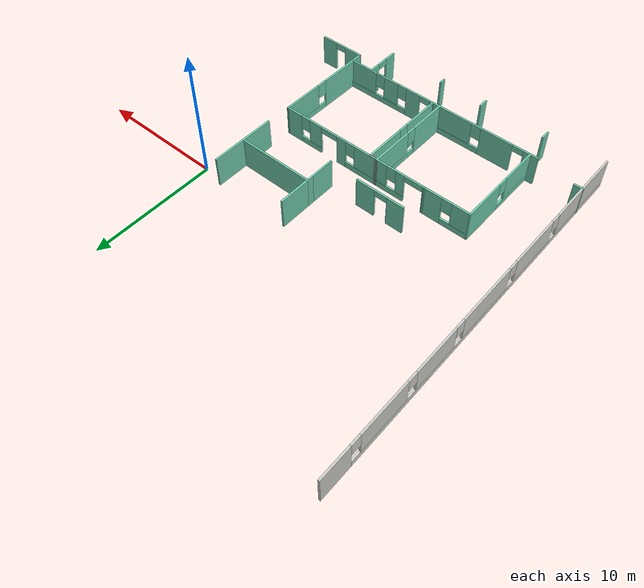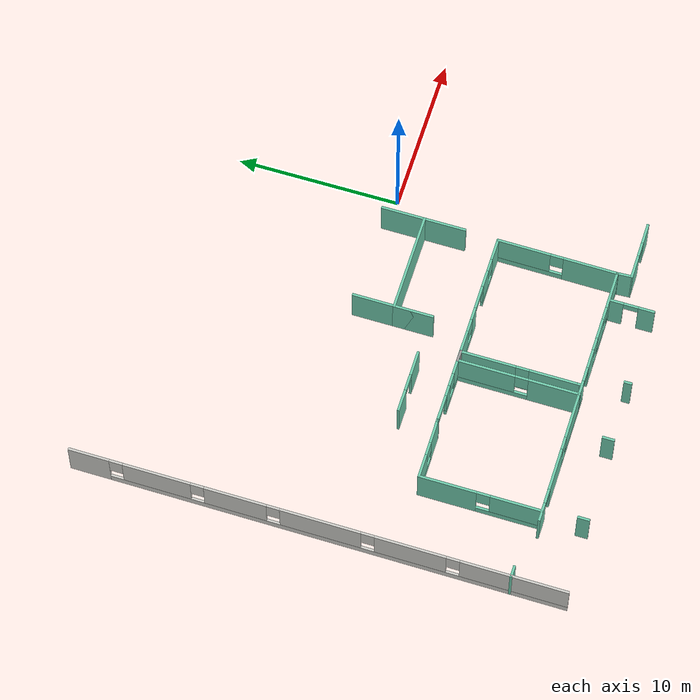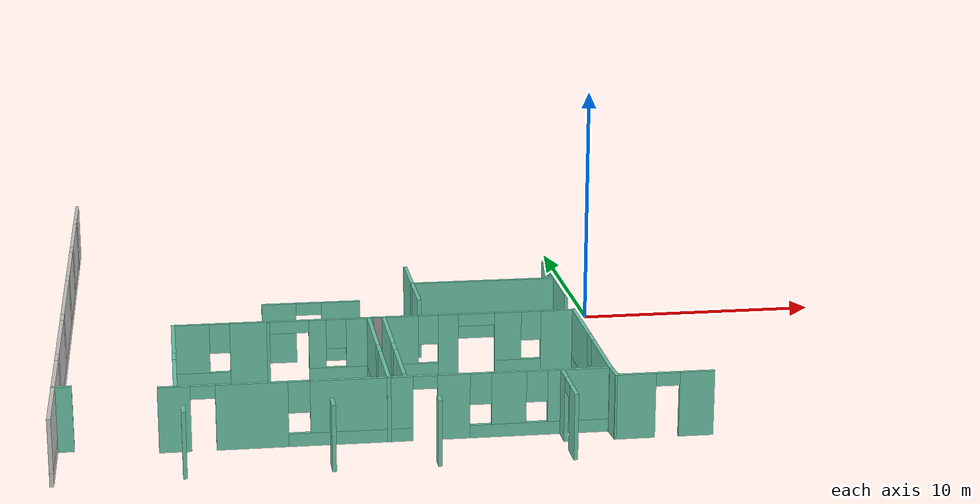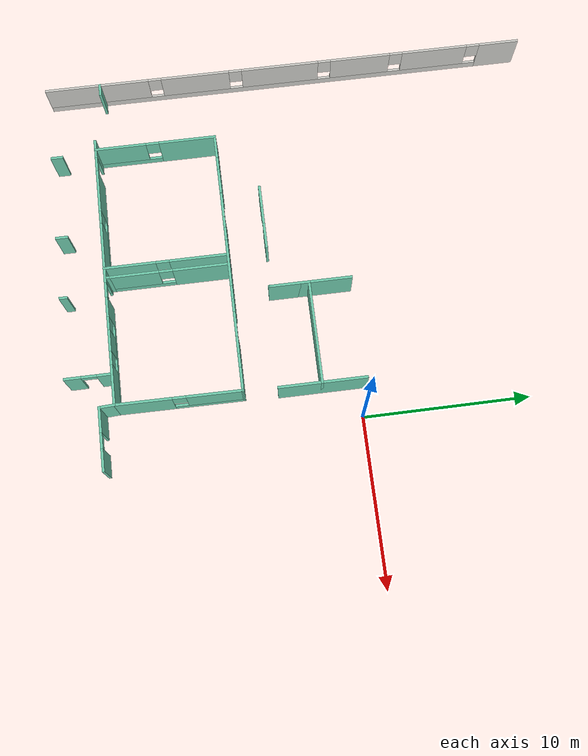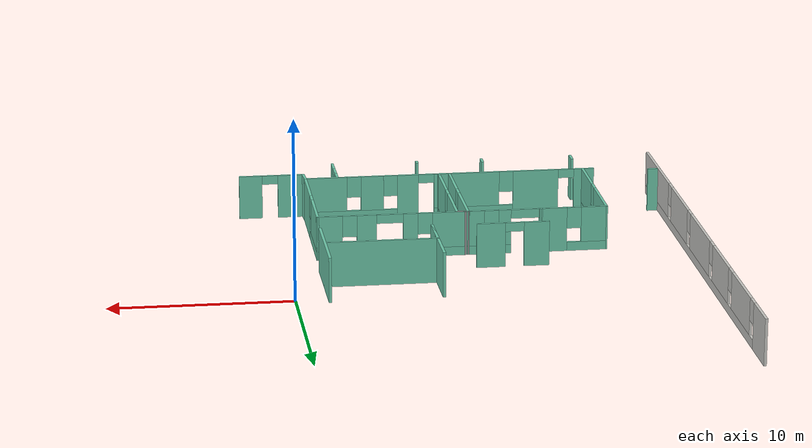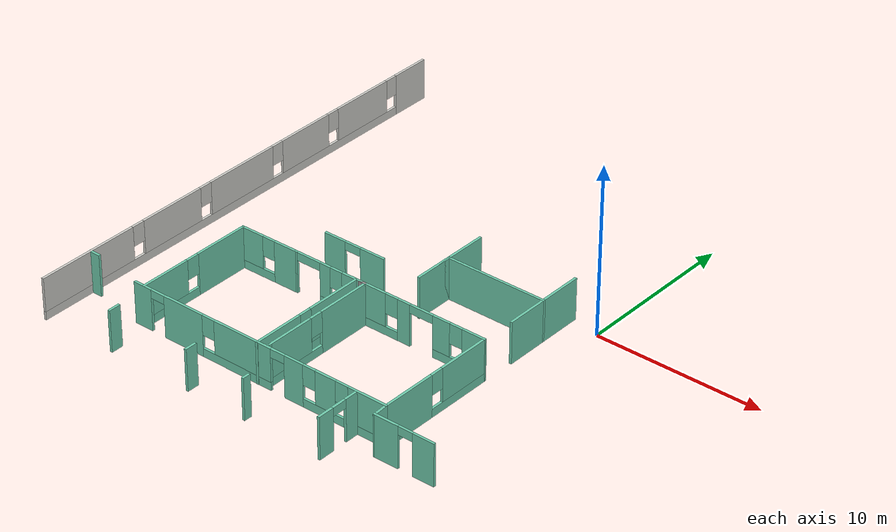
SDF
<sdf version="1.6">
 <model name="Hospital_empty">
  <pose>-0.033999 0.051012 0 0 -0 0</pose>
  <link name="Wall_0">
   <pose>-22.2855 -2.07101 0 0 0 -1.57157</pose>
   <visual name="Wall_0_Visual_0">
    <pose>-13.6979 0 1.25 0 -0 0</pose>
    <geometry><box><size>2.48559 0.15 2.5</size></box></geometry>
    <material>
     <script><uri>file://media/materials/scripts/gazebo.material</uri><name>Gazebo/CeilingTiled</name></script>
     <ambient>0.435294 0.796078 0.67451 1</ambient>
    </material>
   </visual>
   <collision name="Wall_0_Collision_0">
    <geometry><box><size>2.48559 0.15 2.5</size></box></geometry>
    <pose>-13.6979 0 1.25 0 -0 0</pose>
   </collision>
   <visual name="Wall_0_Visual_1">
    <pose>1.2428 0 0.25 0 -0 0</pose>
    <geometry><box><size>27.3959 0.15 0.5</size></box></geometry>
    <material>
     <script><uri>file://media/materials/scripts/gazebo.material</uri><name>Gazebo/CeilingTiled</name></script>
     <ambient>0.435294 0.796078 0.67451 1</ambient>
    </material>
   </visual>
   <collision name="Wall_0_Collision_1">
    <geometry><box><size>27.3959 0.15 0.5</size></box></geometry>
    <pose>1.2428 0 0.25 0 -0 0</pose>
   </collision>
   <visual name="Wall_0_Visual_2">
    <pose>-9.59967 0 1.5 0 -0 0</pose>
    <geometry><box><size>4.11095 0.15 2</size></box></geometry>
    <material>
     <script><uri>file://media/materials/scripts/gazebo.material</uri><name>Gazebo/CeilingTiled</name></script>
     <ambient>0.435294 0.796078 0.67451 1</ambient>
    </material>
   </visual>
   <collision name="Wall_0_Collision_2">
    <geometry><box><size>4.11095 0.15 2</size></box></geometry>
    <pose>-9.59967 0 1.5 0 -0 0</pose>
   </collision>
   <visual name="Wall_0_Visual_3">
    <pose>-4.86411 0 1.5 0 -0 0</pose>
    <geometry><box><size>3.76016 0.15 2</size></box></geometry>
    <material>
     <script><uri>file://media/materials/scripts/gazebo.material</uri><name>Gazebo/CeilingTiled</name></script>
     <ambient>0.435294 0.796078 0.67451 1</ambient>
    </material>
   </visual>
   <collision name="Wall_0_Collision_3">
    <geometry><box><size>3.76016 0.15 2</size></box></geometry>
    <pose>-4.86411 0 1.5 0 -0 0</pose>
   </collision>
   <visual name="Wall_0_Visual_4">
    <pose>0.23681 0 1.5 0 -0 0</pose>
    <geometry><box><size>4.84168 0.15 2</size></box></geometry>
    <material>
     <script><uri>file://media/materials/scripts/gazebo.material</uri><name>Gazebo/CeilingTiled</name></script>
     <ambient>0.435294 0.796078 0.67451 1</ambient>
    </material>
   </visual>
   <collision name="Wall_0_Collision_4">
    <geometry><box><size>4.84168 0.15 2</size></box></geometry>
    <pose>0.23681 0 1.5 0 -0 0</pose>
   </collision>
   <visual name="Wall_0_Visual_5">
    <pose>5.5901 0 1.5 0 -0 0</pose>
    <geometry><box><size>4.2649 0.15 2</size></box></geometry>
    <material>
     <script><uri>file://media/materials/scripts/gazebo.material</uri><name>Gazebo/CeilingTiled</name></script>
     <ambient>0.435294 0.796078 0.67451 1</ambient>
    </material>
   </visual>
   <collision name="Wall_0_Collision_5">
    <geometry><box><size>4.2649 0.15 2</size></box></geometry>
    <pose>5.5901 0 1.5 0 -0 0</pose>
   </collision>
   <visual name="Wall_0_Visual_6">
    <pose>11.7316 0 1.5 0 -0 0</pose>
    <geometry><box><size>6.41818 0.15 2</size></box></geometry>
    <material>
     <script><uri>file://media/materials/scripts/gazebo.material</uri><name>Gazebo/CeilingTiled</name></script>
     <ambient>0.435294 0.796078 0.67451 1</ambient>
    </material>
   </visual>
   <collision name="Wall_0_Collision_6">
    <geometry><box><size>6.41818 0.15 2</size></box></geometry>
    <pose>11.7316 0 1.5 0 -0 0</pose>
   </collision>
   <visual name="Wall_0_Visual_7">
    <pose>-12.0551 0 1.9 0 -0 0</pose>
    <geometry><box><size>0.8 0.15 1.2</size></box></geometry>
    <material>
     <script><uri>file://media/materials/scripts/gazebo.material</uri><name>Gazebo/CeilingTiled</name></script>
     <ambient>0.435294 0.796078 0.67451 1</ambient>
    </material>
   </visual>
   <collision name="Wall_0_Collision_7">
    <geometry><box><size>0.8 0.15 1.2</size></box></geometry>
    <pose>-12.0551 0 1.9 0 -0 0</pose>
   </collision>
   <visual name="Wall_0_Visual_8">
    <pose>-7.14419 0 1.9 0 -0 0</pose>
    <geometry><box><size>0.8 0.15 1.2</size></box></geometry>
    <material>
     <script><uri>file://media/materials/scripts/gazebo.material</uri><name>Gazebo/CeilingTiled</name></script>
     <ambient>0.435294 0.796078 0.67451 1</ambient>
    </material>
   </visual>
   <collision name="Wall_0_Collision_8">
    <geometry><box><size>0.8 0.15 1.2</size></box></geometry>
    <pose>-7.14419 0 1.9 0 -0 0</pose>
   </collision>
   <visual name="Wall_0_Visual_9">
    <pose>-2.58403 0 1.9 0 -0 0</pose>
    <geometry><box><size>0.8 0.15 1.2</size></box></geometry>
    <material>
     <script><uri>file://media/materials/scripts/gazebo.material</uri><name>Gazebo/CeilingTiled</name></script>
     <ambient>0.435294 0.796078 0.67451 1</ambient>
    </material>
   </visual>
   <collision name="Wall_0_Collision_9">
    <geometry><box><size>0.8 0.15 1.2</size></box></geometry>
    <pose>-2.58403 0 1.9 0 -0 0</pose>
   </collision>
   <visual name="Wall_0_Visual_10">
    <pose>3.05765 0 1.9 0 -0 0</pose>
    <geometry><box><size>0.8 0.15 1.2</size></box></geometry>
    <material>
     <script><uri>file://media/materials/scripts/gazebo.material</uri><name>Gazebo/CeilingTiled</name></script>
     <ambient>0.435294 0.796078 0.67451 1</ambient>
    </material>
   </visual>
   <collision name="Wall_0_Collision_10">
    <geometry><box><size>0.8 0.15 1.2</size></box></geometry>
    <pose>3.05765 0 1.9 0 -0 0</pose>
   </collision>
   <visual name="Wall_0_Visual_11">
    <pose>8.12255 0 1.9 0 -0 0</pose>
    <geometry><box><size>0.8 0.15 1.2</size></box></geometry>
    <material>
     <script><uri>file://media/materials/scripts/gazebo.material</uri><name>Gazebo/CeilingTiled</name></script>
     <ambient>0.435294 0.796078 0.67451 1</ambient>
    </material>
   </visual>
   <collision name="Wall_0_Collision_11">
    <geometry><box><size>0.8 0.15 1.2</size></box></geometry>
    <pose>8.12255 0 1.9 0 -0 0</pose>
   </collision>
  </link>
  <link name="Wall_26">
   <pose>-16.0778 -6.83628 0 0 0 -3.13652</pose>
   <visual name="Wall_26_Visual_0">
    <pose>-1.13589 0 1.25 0 -0 0</pose>
    <geometry><box><size>1.53388 0.15 2.5</size></box></geometry>
    <material>
     <script><uri>file://media/materials/scripts/gazebo.material</uri><name>Gazebo/Grey</name></script>
     <ambient>0.435294 0.796078 0.67451 1</ambient>
    </material>
   </visual>
   <collision name="Wall_26_Collision_0">
    <geometry><box><size>1.53388 0.15 2.5</size></box></geometry>
    <pose>-1.13589 0 1.25 0 -0 0</pose>
   </collision>
   <visual name="Wall_26_Visual_1">
    <pose>0.766942 0 0.25 0 -0 0</pose>
    <geometry><box><size>2.27178 0.15 0.5</size></box></geometry>
    <material>
     <script><uri>file://media/materials/scripts/gazebo.material</uri><name>Gazebo/Grey</name></script>
     <ambient>0.435294 0.796078 0.67451 1</ambient>
    </material>
   </visual>
   <collision name="Wall_26_Collision_1">
    <geometry><box><size>2.27178 0.15 0.5</size></box></geometry>
    <pose>0.766942 0 0.25 0 -0 0</pose>
   </collision>
   <visual name="Wall_26_Visual_2">
    <pose>1.16694 0 1.5 0 -0 0</pose>
    <geometry><box><size>1.47178 0.15 2</size></box></geometry>
    <material>
     <script><uri>file://media/materials/scripts/gazebo.material</uri><name>Gazebo/Grey</name></script>
     <ambient>0.435294 0.796078 0.67451 1</ambient>
    </material>
   </visual>
   <collision name="Wall_26_Collision_2">
    <geometry><box><size>1.47178 0.15 2</size></box></geometry>
    <pose>1.16694 0 1.5 0 -0 0</pose>
   </collision>
   <visual name="Wall_26_Visual_3">
    <pose>0.031054 0 1.9 0 -0 0</pose>
    <geometry><box><size>0.8 0.15 1.2</size></box></geometry>
    <material>
     <script><uri>file://media/materials/scripts/gazebo.material</uri><name>Gazebo/Grey</name></script>
     <ambient>0.435294 0.796078 0.67451 1</ambient>
    </material>
   </visual>
   <collision name="Wall_26_Collision_3">
    <geometry><box><size>0.8 0.15 1.2</size></box></geometry>
    <pose>0.031054 0 1.9 0 -0 0</pose>
   </collision>
  </link>
  <link name="Wall_27">
   <pose>-17.9239 -10.5019 0 0 0 -1.57074</pose>
   <visual name="Wall_27_Visual_0">
    <pose>-1.97654 0 1.25 0 -0 0</pose>
    <geometry><box><size>3.50967 0.15 2.5</size></box></geometry>
    <material>
     <script><uri>file://media/materials/scripts/gazebo.material</uri><name>Gazebo/Grey</name></script>
     <ambient>0.435294 0.796078 0.67451 1</ambient>
    </material>
   </visual>
   <collision name="Wall_27_Collision_0">
    <geometry><box><size>3.50967 0.15 2.5</size></box></geometry>
    <pose>-1.97654 0 1.25 0 -0 0</pose>
   </collision>
   <visual name="Wall_27_Visual_1">
    <pose>1.75483 0 0.25 0 -0 0</pose>
    <geometry><box><size>3.95309 0.15 0.5</size></box></geometry>
    <material>
     <script><uri>file://media/materials/scripts/gazebo.material</uri><name>Gazebo/Grey</name></script>
     <ambient>0.435294 0.796078 0.67451 1</ambient>
    </material>
   </visual>
   <collision name="Wall_27_Collision_1">
    <geometry><box><size>3.95309 0.15 0.5</size></box></geometry>
    <pose>1.75483 0 0.25 0 -0 0</pose>
   </collision>
   <visual name="Wall_27_Visual_2">
    <pose>2.15483 0 1.5 0 -0 0</pose>
    <geometry><box><size>3.15309 0.15 2</size></box></geometry>
    <material>
     <script><uri>file://media/materials/scripts/gazebo.material</uri><name>Gazebo/Grey</name></script>
     <ambient>0.435294 0.796078 0.67451 1</ambient>
    </material>
   </visual>
   <collision name="Wall_27_Collision_2">
    <geometry><box><size>3.15309 0.15 2</size></box></geometry>
    <pose>2.15483 0 1.5 0 -0 0</pose>
   </collision>
   <visual name="Wall_27_Visual_3">
    <pose>0.17829 0 1.9 0 -0 0</pose>
    <geometry><box><size>0.8 0.15 1.2</size></box></geometry>
    <material>
     <script><uri>file://media/materials/scripts/gazebo.material</uri><name>Gazebo/Grey</name></script>
     <ambient>0.435294 0.796078 0.67451 1</ambient>
    </material>
   </visual>
   <collision name="Wall_27_Collision_3">
    <geometry><box><size>0.8 0.15 1.2</size></box></geometry>
    <pose>0.17829 0 1.9 0 -0 0</pose>
   </collision>
  </link>
  <link name="Wall_29">
   <pose>-10.1967 -14.1601 0 0 -0 0</pose>
   <visual name="Wall_29_Visual_0">
    <pose>-7.78661 0 1.25 0 -0 0</pose>
    <geometry><box><size>1.17678 0.15 2.5</size></box></geometry>
    <material>
     <script><uri>file://media/materials/scripts/gazebo.material</uri><name>Gazebo/Grey</name></script>
     <ambient>0.435294 0.796078 0.67451 1</ambient>
    </material>
   </visual>
   <collision name="Wall_29_Collision_0">
    <geometry><box><size>1.17678 0.15 2.5</size></box></geometry>
    <pose>-7.78661 0 1.25 0 -0 0</pose>
   </collision>
   <visual name="Wall_29_Visual_1">
    <pose>-4.98142 0 1.25 0 -0 0</pose>
    <geometry><box><size>2.6336 0.15 2.5</size></box></geometry>
    <material>
     <script><uri>file://media/materials/scripts/gazebo.material</uri><name>Gazebo/Grey</name></script>
     <ambient>0.435294 0.796078 0.67451 1</ambient>
    </material>
   </visual>
   <collision name="Wall_29_Collision_1">
    <geometry><box><size>2.6336 0.15 2.5</size></box></geometry>
    <pose>-4.98142 0 1.25 0 -0 0</pose>
   </collision>
   <visual name="Wall_29_Visual_2">
    <pose>2.41717 0 1.25 0 -0 0</pose>
    <geometry><box><size>1.21642 0.15 2.5</size></box></geometry>
    <material>
     <script><uri>file://media/materials/scripts/gazebo.material</uri><name>Gazebo/Grey</name></script>
     <ambient>0.435294 0.796078 0.67451 1</ambient>
    </material>
   </visual>
   <collision name="Wall_29_Collision_2">
    <geometry><box><size>1.21642 0.15 2.5</size></box></geometry>
    <pose>2.41717 0 1.25 0 -0 0</pose>
   </collision>
   <visual name="Wall_29_Visual_3">
    <pose>-1.37783 0 0.25 0 -0 0</pose>
    <geometry><box><size>4.57358 0.15 0.5</size></box></geometry>
    <material>
     <script><uri>file://media/materials/scripts/gazebo.material</uri><name>Gazebo/Grey</name></script>
     <ambient>0.435294 0.796078 0.67451 1</ambient>
    </material>
   </visual>
   <collision name="Wall_29_Collision_3">
    <geometry><box><size>4.57358 0.15 0.5</size></box></geometry>
    <pose>-1.37783 0 0.25 0 -0 0</pose>
   </collision>
   <visual name="Wall_29_Visual_4">
    <pose>5.70019 0 0.25 0 -0 0</pose>
    <geometry><box><size>5.34962 0.15 0.5</size></box></geometry>
    <material>
     <script><uri>file://media/materials/scripts/gazebo.material</uri><name>Gazebo/Grey</name></script>
     <ambient>0.435294 0.796078 0.67451 1</ambient>
    </material>
   </visual>
   <collision name="Wall_29_Collision_4">
    <geometry><box><size>5.34962 0.15 0.5</size></box></geometry>
    <pose>5.70019 0 0.25 0 -0 0</pose>
   </collision>
   <visual name="Wall_29_Visual_5">
    <pose>-0.97783 0 1.5 0 -0 0</pose>
    <geometry><box><size>3.77358 0.15 2</size></box></geometry>
    <material>
     <script><uri>file://media/materials/scripts/gazebo.material</uri><name>Gazebo/Grey</name></script>
     <ambient>0.435294 0.796078 0.67451 1</ambient>
    </material>
   </visual>
   <collision name="Wall_29_Collision_5">
    <geometry><box><size>3.77358 0.15 2</size></box></geometry>
    <pose>-0.97783 0 1.5 0 -0 0</pose>
   </collision>
   <visual name="Wall_29_Visual_6">
    <pose>-0.97783 0 1.5 0 -0 0</pose>
    <geometry><box><size>3.77358 0.15 2</size></box></geometry>
    <material>
     <script><uri>file://media/materials/scripts/gazebo.material</uri><name>Gazebo/Grey</name></script>
     <ambient>0.435294 0.796078 0.67451 1</ambient>
    </material>
   </visual>
   <collision name="Wall_29_Collision_6">
    <geometry><box><size>3.77358 0.15 2</size></box></geometry>
    <pose>-0.97783 0 1.5 0 -0 0</pose>
   </collision>
   <visual name="Wall_29_Visual_7">
    <pose>4.47538 0 1.5 0 -0 0</pose>
    <geometry><box><size>1.3 0.15 2</size></box></geometry>
    <material>
     <script><uri>file://media/materials/scripts/gazebo.material</uri><name>Gazebo/Grey</name></script>
     <ambient>0.435294 0.796078 0.67451 1</ambient>
    </material>
   </visual>
   <collision name="Wall_29_Collision_7">
    <geometry><box><size>1.3 0.15 2</size></box></geometry>
    <pose>4.47538 0 1.5 0 -0 0</pose>
   </collision>
   <visual name="Wall_29_Visual_8">
    <pose>7.15019 0 1.5 0 -0 0</pose>
    <geometry><box><size>2.44962 0.15 2</size></box></geometry>
    <material>
     <script><uri>file://media/materials/scripts/gazebo.material</uri><name>Gazebo/Grey</name></script>
     <ambient>0.435294 0.796078 0.67451 1</ambient>
    </material>
   </visual>
   <collision name="Wall_29_Collision_8">
    <geometry><box><size>2.44962 0.15 2</size></box></geometry>
    <pose>7.15019 0 1.5 0 -0 0</pose>
   </collision>
   <visual name="Wall_29_Visual_9">
    <pose>-3.26462 0 1.9 0 -0 0</pose>
    <geometry><box><size>0.8 0.15 1.2</size></box></geometry>
    <material>
     <script><uri>file://media/materials/scripts/gazebo.material</uri><name>Gazebo/Grey</name></script>
     <ambient>0.435294 0.796078 0.67451 1</ambient>
    </material>
   </visual>
   <collision name="Wall_29_Collision_9">
    <geometry><box><size>0.8 0.15 1.2</size></box></geometry>
    <pose>-3.26462 0 1.9 0 -0 0</pose>
   </collision>
   <visual name="Wall_29_Visual_10">
    <pose>3.42538 0 1.9 0 -0 0</pose>
    <geometry><box><size>0.8 0.15 1.2</size></box></geometry>
    <material>
     <script><uri>file://media/materials/scripts/gazebo.material</uri><name>Gazebo/Grey</name></script>
     <ambient>0.435294 0.796078 0.67451 1</ambient>
    </material>
   </visual>
   <collision name="Wall_29_Collision_10">
    <geometry><box><size>0.8 0.15 1.2</size></box></geometry>
    <pose>3.42538 0 1.9 0 -0 0</pose>
   </collision>
   <visual name="Wall_29_Visual_11">
    <pose>5.52538 0 1.9 0 -0 0</pose>
    <geometry><box><size>0.8 0.15 1.2</size></box></geometry>
    <material>
     <script><uri>file://media/materials/scripts/gazebo.material</uri><name>Gazebo/Grey</name></script>
     <ambient>0.435294 0.796078 0.67451 1</ambient>
    </material>
   </visual>
   <collision name="Wall_29_Collision_11">
    <geometry><box><size>0.8 0.15 1.2</size></box></geometry>
    <pose>5.52538 0 1.9 0 -0 0</pose>
   </collision>
   <visual name="Wall_29_Visual_12">
    <pose>-6.74822 0 2.25 0 -0 0</pose>
    <geometry><box><size>0.9 0.15 0.5</size></box></geometry>
    <material>
     <script><uri>file://media/materials/scripts/gazebo.material</uri><name>Gazebo/Grey</name></script>
     <ambient>0.435294 0.796078 0.67451 1</ambient>
    </material>
   </visual>
   <collision name="Wall_29_Collision_12">
    <geometry><box><size>0.9 0.15 0.5</size></box></geometry>
    <pose>-6.74822 0 2.25 0 -0 0</pose>
   </collision>
   <visual name="Wall_29_Visual_13">
    <pose>1.35896 0 2.25 0 -0 0</pose>
    <geometry><box><size>0.9 0.15 0.5</size></box></geometry>
    <material>
     <script><uri>file://media/materials/scripts/gazebo.material</uri><name>Gazebo/Grey</name></script>
     <ambient>0.435294 0.796078 0.67451 1</ambient>
    </material>
   </visual>
   <collision name="Wall_29_Collision_13">
    <geometry><box><size>0.9 0.15 0.5</size></box></geometry>
    <pose>1.35896 0 2.25 0 -0 0</pose>
   </collision>
   <visual name="Wall_29_Visual_14">
    <pose>1.35896 0 2.25 0 -0 0</pose>
    <geometry><box><size>0.9 0.15 0.5</size></box></geometry>
    <material>
     <script><uri>file://media/materials/scripts/gazebo.material</uri><name>Gazebo/Grey</name></script>
     <ambient>0.435294 0.796078 0.67451 1</ambient>
    </material>
   </visual>
   <collision name="Wall_29_Collision_14">
    <geometry><box><size>0.9 0.15 0.5</size></box></geometry>
    <pose>1.35896 0 2.25 0 -0 0</pose>
   </collision>
  </link>
  <link name="Wall_30">
   <pose>-1.87337 -10.5028 0 0 -0 1.56444</pose>
   <visual name="Wall_30_Visual_0">
    <pose>-2.06072 0 1.25 0 -0 0</pose>
    <geometry><box><size>3.38045 0.15 2.5</size></box></geometry>
    <material>
     <script><uri>file://media/materials/scripts/gazebo.material</uri><name>Gazebo/Grey</name></script>
     <ambient>0.435294 0.796078 0.67451 1</ambient>
    </material>
   </visual>
   <collision name="Wall_30_Collision_0">
    <geometry><box><size>3.38045 0.15 2.5</size></box></geometry>
    <pose>-2.06072 0 1.25 0 -0 0</pose>
   </collision>
   <visual name="Wall_30_Visual_1">
    <pose>1.69023 0 0.25 0 -0 0</pose>
    <geometry><box><size>4.12145 0.15 0.5</size></box></geometry>
    <material>
     <script><uri>file://media/materials/scripts/gazebo.material</uri><name>Gazebo/Grey</name></script>
     <ambient>0.435294 0.796078 0.67451 1</ambient>
    </material>
   </visual>
   <collision name="Wall_30_Collision_1">
    <geometry><box><size>4.12145 0.15 0.5</size></box></geometry>
    <pose>1.69023 0 0.25 0 -0 0</pose>
   </collision>
   <visual name="Wall_30_Visual_2">
    <pose>2.09023 0 1.5 0 -0 0</pose>
    <geometry><box><size>3.32145 0.15 2</size></box></geometry>
    <material>
     <script><uri>file://media/materials/scripts/gazebo.material</uri><name>Gazebo/Grey</name></script>
     <ambient>0.435294 0.796078 0.67451 1</ambient>
    </material>
   </visual>
   <collision name="Wall_30_Collision_2">
    <geometry><box><size>3.32145 0.15 2</size></box></geometry>
    <pose>2.09023 0 1.5 0 -0 0</pose>
   </collision>
   <visual name="Wall_30_Visual_3">
    <pose>0.029504 0 1.9 0 -0 0</pose>
    <geometry><box><size>0.8 0.15 1.2</size></box></geometry>
    <material>
     <script><uri>file://media/materials/scripts/gazebo.material</uri><name>Gazebo/Grey</name></script>
     <ambient>0.435294 0.796078 0.67451 1</ambient>
    </material>
   </visual>
   <collision name="Wall_30_Collision_3">
    <geometry><box><size>0.8 0.15 1.2</size></box></geometry>
    <pose>0.029504 0 1.9 0 -0 0</pose>
   </collision>
  </link>
  <link name="Wall_31">
   <pose>-8.05 -6.82701 0 0 -0 3.14159</pose>
   <visual name="Wall_31_Visual_0">
    <pose>-5.55699 0 1.25 0 -0 0</pose>
    <geometry><box><size>1.43602 0.15 2.5</size></box></geometry>
    <material>
     <script><uri>file://media/materials/scripts/gazebo.material</uri><name>Gazebo/Grey</name></script>
     <ambient>0.435294 0.796078 0.67451 1</ambient>
    </material>
   </visual>
   <collision name="Wall_31_Collision_0">
    <geometry><box><size>1.43602 0.15 2.5</size></box></geometry>
    <pose>-5.55699 0 1.25 0 -0 0</pose>
   </collision>
   <visual name="Wall_31_Visual_1">
    <pose>-1.06729 0 1.25 0 -0 0</pose>
    <geometry><box><size>0.804786 0.15 2.5</size></box></geometry>
    <material>
     <script><uri>file://media/materials/scripts/gazebo.material</uri><name>Gazebo/Grey</name></script>
     <ambient>0.435294 0.796078 0.67451 1</ambient>
    </material>
   </visual>
   <collision name="Wall_31_Collision_1">
    <geometry><box><size>0.804786 0.15 2.5</size></box></geometry>
    <pose>-1.06729 0 1.25 0 -0 0</pose>
   </collision>
   <visual name="Wall_31_Visual_2">
    <pose>6.1767 0 1.25 0 -0 0</pose>
    <geometry><box><size>0.196605 0.15 2.5</size></box></geometry>
    <material>
     <script><uri>file://media/materials/scripts/gazebo.material</uri><name>Gazebo/Grey</name></script>
     <ambient>0.435294 0.796078 0.67451 1</ambient>
    </material>
   </visual>
   <collision name="Wall_31_Collision_2">
    <geometry><box><size>0.196605 0.15 2.5</size></box></geometry>
    <pose>6.1767 0 1.25 0 -0 0</pose>
   </collision>
   <visual name="Wall_31_Visual_3">
    <pose>-3.8954 0 0.25 0 -0 0</pose>
    <geometry><box><size>1.88718 0.15 0.5</size></box></geometry>
    <material>
     <script><uri>file://media/materials/scripts/gazebo.material</uri><name>Gazebo/Grey</name></script>
     <ambient>0.435294 0.796078 0.67451 1</ambient>
    </material>
   </visual>
   <collision name="Wall_31_Collision_3">
    <geometry><box><size>1.88718 0.15 0.5</size></box></geometry>
    <pose>-3.8954 0 0.25 0 -0 0</pose>
   </collision>
   <visual name="Wall_31_Visual_4">
    <pose>1.93145 0 0.25 0 -0 0</pose>
    <geometry><box><size>5.19268 0.15 0.5</size></box></geometry>
    <material>
     <script><uri>file://media/materials/scripts/gazebo.material</uri><name>Gazebo/Grey</name></script>
     <ambient>0.435294 0.796078 0.67451 1</ambient>
    </material>
   </visual>
   <collision name="Wall_31_Collision_4">
    <geometry><box><size>5.19268 0.15 0.5</size></box></geometry>
    <pose>1.93145 0 0.25 0 -0 0</pose>
   </collision>
   <visual name="Wall_31_Visual_5">
    <pose>-3.49539 0 1.5 0 -0 0</pose>
    <geometry><box><size>1.08718 0.15 2</size></box></geometry>
    <material>
     <script><uri>file://media/materials/scripts/gazebo.material</uri><name>Gazebo/Grey</name></script>
     <ambient>0.435294 0.796078 0.67451 1</ambient>
    </material>
   </visual>
   <collision name="Wall_31_Collision_5">
    <geometry><box><size>1.08718 0.15 2</size></box></geometry>
    <pose>-3.49539 0 1.5 0 -0 0</pose>
   </collision>
   <visual name="Wall_31_Visual_6">
    <pose>-3.49539 0 1.5 0 -0 0</pose>
    <geometry><box><size>1.08718 0.15 2</size></box></geometry>
    <material>
     <script><uri>file://media/materials/scripts/gazebo.material</uri><name>Gazebo/Grey</name></script>
     <ambient>0.435294 0.796078 0.67451 1</ambient>
    </material>
   </visual>
   <collision name="Wall_31_Collision_6">
    <geometry><box><size>1.08718 0.15 2</size></box></geometry>
    <pose>-3.49539 0 1.5 0 -0 0</pose>
   </collision>
   <visual name="Wall_31_Visual_7">
    <pose>1.58719 0 1.5 0 -0 0</pose>
    <geometry><box><size>2.90417 0.15 2</size></box></geometry>
    <material>
     <script><uri>file://media/materials/scripts/gazebo.material</uri><name>Gazebo/Grey</name></script>
     <ambient>0.435294 0.796078 0.67451 1</ambient>
    </material>
   </visual>
   <collision name="Wall_31_Collision_7">
    <geometry><box><size>2.90417 0.15 2</size></box></geometry>
    <pose>1.58719 0 1.5 0 -0 0</pose>
   </collision>
   <visual name="Wall_31_Visual_8">
    <pose>4.18353 0 1.5 0 -0 0</pose>
    <geometry><box><size>0.688507 0.15 2</size></box></geometry>
    <material>
     <script><uri>file://media/materials/scripts/gazebo.material</uri><name>Gazebo/Grey</name></script>
     <ambient>0.435294 0.796078 0.67451 1</ambient>
    </material>
   </visual>
   <collision name="Wall_31_Collision_8">
    <geometry><box><size>0.688507 0.15 2</size></box></geometry>
    <pose>4.18353 0 1.5 0 -0 0</pose>
   </collision>
   <visual name="Wall_31_Visual_9">
    <pose>-4.43898 0 1.9 0 -0 0</pose>
    <geometry><box><size>0.8 0.15 1.2</size></box></geometry>
    <material>
     <script><uri>file://media/materials/scripts/gazebo.material</uri><name>Gazebo/Grey</name></script>
     <ambient>0.435294 0.796078 0.67451 1</ambient>
    </material>
   </visual>
   <collision name="Wall_31_Collision_9">
    <geometry><box><size>0.8 0.15 1.2</size></box></geometry>
    <pose>-4.43898 0 1.9 0 -0 0</pose>
   </collision>
   <visual name="Wall_31_Visual_10">
    <pose>-0.264895 0 1.9 0 -0 0</pose>
    <geometry><box><size>0.8 0.15 1.2</size></box></geometry>
    <material>
     <script><uri>file://media/materials/scripts/gazebo.material</uri><name>Gazebo/Grey</name></script>
     <ambient>0.435294 0.796078 0.67451 1</ambient>
    </material>
   </visual>
   <collision name="Wall_31_Collision_10">
    <geometry><box><size>0.8 0.15 1.2</size></box></geometry>
    <pose>-0.264895 0 1.9 0 -0 0</pose>
   </collision>
   <visual name="Wall_31_Visual_11">
    <pose>3.43928 0 1.9 0 -0 0</pose>
    <geometry><box><size>0.8 0.15 1.2</size></box></geometry>
    <material>
     <script><uri>file://media/materials/scripts/gazebo.material</uri><name>Gazebo/Grey</name></script>
     <ambient>0.435294 0.796078 0.67451 1</ambient>
    </material>
   </visual>
   <collision name="Wall_31_Collision_11">
    <geometry><box><size>0.8 0.15 1.2</size></box></geometry>
    <pose>3.43928 0 1.9 0 -0 0</pose>
   </collision>
   <visual name="Wall_31_Visual_12">
    <pose>-2.21074 0 2.25 0 -0 0</pose>
    <geometry><box><size>1.48212 0.15 0.5</size></box></geometry>
    <material>
     <script><uri>file://media/materials/scripts/gazebo.material</uri><name>Gazebo/Grey</name></script>
     <ambient>0.435294 0.796078 0.67451 1</ambient>
    </material>
   </visual>
   <collision name="Wall_31_Collision_12">
    <geometry><box><size>1.48212 0.15 0.5</size></box></geometry>
    <pose>-2.21074 0 2.25 0 -0 0</pose>
   </collision>
   <visual name="Wall_31_Visual_13">
    <pose>-2.21074 0 2.25 0 -0 0</pose>
    <geometry><box><size>1.48212 0.15 0.5</size></box></geometry>
    <material>
     <script><uri>file://media/materials/scripts/gazebo.material</uri><name>Gazebo/Grey</name></script>
     <ambient>0.435294 0.796078 0.67451 1</ambient>
    </material>
   </visual>
   <collision name="Wall_31_Collision_13">
    <geometry><box><size>1.48212 0.15 0.5</size></box></geometry>
    <pose>-2.21074 0 2.25 0 -0 0</pose>
   </collision>
   <visual name="Wall_31_Visual_14">
    <pose>5.30309 0 2.25 0 -0 0</pose>
    <geometry><box><size>1.55061 0.15 0.5</size></box></geometry>
    <material>
     <script><uri>file://media/materials/scripts/gazebo.material</uri><name>Gazebo/Grey</name></script>
     <ambient>0.435294 0.796078 0.67451 1</ambient>
    </material>
   </visual>
   <collision name="Wall_31_Collision_14">
    <geometry><box><size>1.55061 0.15 0.5</size></box></geometry>
    <pose>5.30309 0 2.25 0 -0 0</pose>
   </collision>
  </link>
  <link name="Wall_33">
   <pose>-10.174 -10.496 0 0 -0 1.5708</pose>
   <visual name="Wall_33_Visual_0">
    <pose>-2.18363 0 1.25 0 -0 0</pose>
    <geometry><box><size>3.13274 0.15 2.5</size></box></geometry>
    <material>
     <script><uri>file://media/materials/scripts/gazebo.material</uri><name>Gazebo/Grey</name></script>
     <ambient>0.435294 0.796078 0.67451 1</ambient>
    </material>
   </visual>
   <collision name="Wall_33_Collision_0">
    <geometry><box><size>3.13274 0.15 2.5</size></box></geometry>
    <pose>-2.18363 0 1.25 0 -0 0</pose>
   </collision>
   <visual name="Wall_33_Visual_1">
    <pose>1.56637 0 0.25 0 -0 0</pose>
    <geometry><box><size>4.36726 0.15 0.5</size></box></geometry>
    <material>
     <script><uri>file://media/materials/scripts/gazebo.material</uri><name>Gazebo/Grey</name></script>
     <ambient>0.435294 0.796078 0.67451 1</ambient>
    </material>
   </visual>
   <collision name="Wall_33_Collision_1">
    <geometry><box><size>4.36726 0.15 0.5</size></box></geometry>
    <pose>1.56637 0 0.25 0 -0 0</pose>
   </collision>
   <visual name="Wall_33_Visual_2">
    <pose>1.96637 0 1.5 0 -0 0</pose>
    <geometry><box><size>3.56726 0.15 2</size></box></geometry>
    <material>
     <script><uri>file://media/materials/scripts/gazebo.material</uri><name>Gazebo/Grey</name></script>
     <ambient>0.435294 0.796078 0.67451 1</ambient>
    </material>
   </visual>
   <collision name="Wall_33_Collision_2">
    <geometry><box><size>3.56726 0.15 2</size></box></geometry>
    <pose>1.96637 0 1.5 0 -0 0</pose>
   </collision>
   <visual name="Wall_33_Visual_3">
    <pose>-0.217261 0 1.9 0 -0 0</pose>
    <geometry><box><size>0.8 0.15 1.2</size></box></geometry>
    <material>
     <script><uri>file://media/materials/scripts/gazebo.material</uri><name>Gazebo/Grey</name></script>
     <ambient>0.435294 0.796078 0.67451 1</ambient>
    </material>
   </visual>
   <collision name="Wall_33_Collision_3">
    <geometry><box><size>0.8 0.15 1.2</size></box></geometry>
    <pose>-0.217261 0 1.9 0 -0 0</pose>
   </collision>
  </link>
  <link name="Wall_34">
   <collision name="Wall_34_Collision">
    <geometry><box><size>0.75 0.15 2.5</size></box></geometry>
    <pose>0 0 1.25 0 -0 0</pose>
   </collision>
   <visual name="Wall_34_Visual">
    <pose>0 0 1.25 0 -0 0</pose>
    <geometry><box><size>0.75 0.15 2.5</size></box></geometry>
    <material>
     <script><uri>file://media/materials/scripts/gazebo.material</uri><name>Gazebo/Grey</name></script>
     <ambient>1 1 1 1</ambient>
    </material>
   </visual>
   <pose>-9.874 -6.83101 0 0 0 -0.033321</pose>
  </link>
  <link name="Wall_35">
   <pose>-9.574 -10.391 0 0 0 -1.5708</pose>
   <visual name="Wall_35_Visual_0">
    <pose>-1.91963 0 1.25 0 -0 0</pose>
    <geometry><box><size>3.41074 0.15 2.5</size></box></geometry>
    <material>
     <script><uri>file://media/materials/scripts/gazebo.material</uri><name>Gazebo/Grey</name></script>
     <ambient>0.435294 0.796078 0.67451 1</ambient>
    </material>
   </visual>
   <collision name="Wall_35_Collision_0">
    <geometry><box><size>3.41074 0.15 2.5</size></box></geometry>
    <pose>-1.91963 0 1.25 0 -0 0</pose>
   </collision>
   <visual name="Wall_35_Visual_1">
    <pose>1.70537 0 0.25 0 -0 0</pose>
    <geometry><box><size>3.83926 0.15 0.5</size></box></geometry>
    <material>
     <script><uri>file://media/materials/scripts/gazebo.material</uri><name>Gazebo/Grey</name></script>
     <ambient>0.435294 0.796078 0.67451 1</ambient>
    </material>
   </visual>
   <collision name="Wall_35_Collision_1">
    <geometry><box><size>3.83926 0.15 0.5</size></box></geometry>
    <pose>1.70537 0 0.25 0 -0 0</pose>
   </collision>
   <visual name="Wall_35_Visual_2">
    <pose>2.10537 0 1.5 0 -0 0</pose>
    <geometry><box><size>3.03926 0.15 2</size></box></geometry>
    <material>
     <script><uri>file://media/materials/scripts/gazebo.material</uri><name>Gazebo/Grey</name></script>
     <ambient>0.435294 0.796078 0.67451 1</ambient>
    </material>
   </visual>
   <collision name="Wall_35_Collision_2">
    <geometry><box><size>3.03926 0.15 2</size></box></geometry>
    <pose>2.10537 0 1.5 0 -0 0</pose>
   </collision>
   <visual name="Wall_35_Visual_3">
    <pose>0.185739 0 1.9 0 -0 0</pose>
    <geometry><box><size>0.8 0.15 1.2</size></box></geometry>
    <material>
     <script><uri>file://media/materials/scripts/gazebo.material</uri><name>Gazebo/Grey</name></script>
     <ambient>0.435294 0.796078 0.67451 1</ambient>
    </material>
   </visual>
   <collision name="Wall_35_Collision_3">
    <geometry><box><size>0.8 0.15 1.2</size></box></geometry>
    <pose>0.185739 0 1.9 0 -0 0</pose>
   </collision>
  </link>
  <link name="Wall_36">
   <collision name="Wall_36_Collision">
    <geometry><box><size>0.25 0.15 2.5</size></box></geometry>
    <pose>0 0 1.25 0 -0 0</pose>
   </collision>
   <visual name="Wall_36_Visual">
    <pose>0 0 1.25 0 -0 0</pose>
    <geometry><box><size>0.25 0.15 2.5</size></box></geometry>
    <material>
     <script><uri>file://media/materials/scripts/gazebo.material</uri><name>Gazebo/Grey</name></script>
     <ambient>0.435294 0.796078 0.67451 1</ambient>
    </material>
   </visual>
   <pose>-9.574 -13.991 0 0 0 -1.5708</pose>
  </link>
  <link name="Wall_38">
   <collision name="Wall_38_Collision">
    <geometry><box><size>0.75 0.15 2.5</size></box></geometry>
    <pose>0 0 1.25 0 -0 0</pose>
   </collision>
   <visual name="Wall_38_Visual">
    <pose>0 0 1.25 0 -0 0</pose>
    <geometry><box><size>0.75 0.15 2.5</size></box></geometry>
    <material>
     <script><uri>file://media/materials/scripts/gazebo.material</uri><name>Gazebo/Grey</name></script>
     <ambient>0.435294 0.796078 0.67451 1</ambient>
    </material>
   </visual>
   <pose>-22.001 -13.61 0 0 -0 0</pose>
  </link>
  <link name="Wall_40">
   <collision name="Wall_40_Collision">
    <geometry><box><size>0.75 0.15 2.5</size></box></geometry>
    <pose>0 0 1.25 0 -0 0</pose>
   </collision>
   <visual name="Wall_40_Visual">
    <pose>0 0 1.25 0 -0 0</pose>
    <geometry><box><size>0.75 0.15 2.5</size></box></geometry>
    <material>
     <script><uri>file://media/materials/scripts/gazebo.material</uri><name>Gazebo/Grey</name></script>
     <ambient>0.435294 0.796078 0.67451 1</ambient>
    </material>
   </visual>
   <pose>-17.675 -16.545 0 0 -0 1.5708</pose>
  </link>
  <link name="Wall_42">
   <collision name="Wall_42_Collision">
    <geometry><box><size>0.75 0.15 2.5</size></box></geometry>
    <pose>0 0 1.25 0 -0 0</pose>
   </collision>
   <visual name="Wall_42_Visual">
    <pose>0 0 1.25 0 -0 0</pose>
    <geometry><box><size>0.75 0.15 2.5</size></box></geometry>
    <material>
     <script><uri>file://media/materials/scripts/gazebo.material</uri><name>Gazebo/Grey</name></script>
     <ambient>0.435294 0.796078 0.67451 1</ambient>
    </material>
   </visual>
   <pose>-12.423 -16.545 0 0 -0 1.5708</pose>
  </link>
  <link name="Wall_44">
   <collision name="Wall_44_Collision">
    <geometry><box><size>0.5 0.15 2.5</size></box></geometry>
    <pose>0 0 1.25 0 -0 0</pose>
   </collision>
   <visual name="Wall_44_Visual">
    <pose>0 0 1.25 0 -0 0</pose>
    <geometry><box><size>0.5 0.15 2.5</size></box></geometry>
    <material>
     <script><uri>file://media/materials/scripts/gazebo.material</uri><name>Gazebo/Grey</name></script>
     <ambient>0.435294 0.796078 0.67451 1</ambient>
    </material>
   </visual>
   <pose>-8.632 -16.67 0 0 -0 1.5708</pose>
  </link>
  <link name="Wall_46">
   <pose>-3.727 -15.579 0 0 -0 1.5708</pose>
   <visual name="Wall_46_Visual_0">
    <pose>-0.872309 0 1.25 0 -0 0</pose>
    <geometry><box><size>1.00538 0.15 2.5</size></box></geometry>
    <material>
     <script><uri>file://media/materials/scripts/gazebo.material</uri><name>Gazebo/Grey</name></script>
     <ambient>0.435294 0.796078 0.67451 1</ambient>
    </material>
   </visual>
   <collision name="Wall_46_Collision_0">
    <geometry><box><size>1.00538 0.15 2.5</size></box></geometry>
    <pose>-0.872309 0 1.25 0 -0 0</pose>
   </collision>
   <visual name="Wall_46_Visual_1">
    <pose>0.952691 0 1.25 0 -0 0</pose>
    <geometry><box><size>0.844619 0.15 2.5</size></box></geometry>
    <material>
     <script><uri>file://media/materials/scripts/gazebo.material</uri><name>Gazebo/Grey</name></script>
     <ambient>0.435294 0.796078 0.67451 1</ambient>
    </material>
   </visual>
   <collision name="Wall_46_Collision_1">
    <geometry><box><size>0.844619 0.15 2.5</size></box></geometry>
    <pose>0.952691 0 1.25 0 -0 0</pose>
   </collision>
   <visual name="Wall_46_Visual_2">
    <pose>0.080381 0 2.25 0 -0 0</pose>
    <geometry><box><size>0.9 0.15 0.5</size></box></geometry>
    <material>
     <script><uri>file://media/materials/scripts/gazebo.material</uri><name>Gazebo/Grey</name></script>
     <ambient>0.435294 0.796078 0.67451 1</ambient>
    </material>
   </visual>
   <collision name="Wall_46_Collision_2">
    <geometry><box><size>0.9 0.15 0.5</size></box></geometry>
    <pose>0.080381 0 2.25 0 -0 0</pose>
   </collision>
  </link>
  <link name="Wall_48">
   <collision name="Wall_48_Collision">
    <geometry><box><size>0.999675 0.15 2.5</size></box></geometry>
    <pose>0 0 1.25 0 -0 0</pose>
   </collision>
   <visual name="Wall_48_Visual">
    <pose>0 0 1.25 0 -0 0</pose>
    <geometry><box><size>0.999675 0.15 2.5</size></box></geometry>
    <material>
     <script><uri>file://media/materials/scripts/gazebo.material</uri><name>Gazebo/Grey</name></script>
     <ambient>0.435294 0.796078 0.67451 1</ambient>
    </material>
   </visual>
   <pose>-1.87337 -14.6028 0 0 0 -1.51575</pose>
  </link>
  <link name="Wall_49">
   <pose>-0.050001 -15.027 0 0 -0 0</pose>
   <visual name="Wall_49_Visual_0">
    <pose>-1.10746 0 1.25 0 -0 0</pose>
    <geometry><box><size>1.53508 0.15 2.5</size></box></geometry>
    <material>
     <script><uri>file://media/materials/scripts/gazebo.material</uri><name>Gazebo/Grey</name></script>
     <ambient>0.435294 0.796078 0.67451 1</ambient>
    </material>
   </visual>
   <collision name="Wall_49_Collision_0">
    <geometry><box><size>1.53508 0.15 2.5</size></box></geometry>
    <pose>-1.10746 0 1.25 0 -0 0</pose>
   </collision>
   <visual name="Wall_49_Visual_1">
    <pose>1.21754 0 1.25 0 -0 0</pose>
    <geometry><box><size>1.31492 0.15 2.5</size></box></geometry>
    <material>
     <script><uri>file://media/materials/scripts/gazebo.material</uri><name>Gazebo/Grey</name></script>
     <ambient>0.435294 0.796078 0.67451 1</ambient>
    </material>
   </visual>
   <collision name="Wall_49_Collision_1">
    <geometry><box><size>1.31492 0.15 2.5</size></box></geometry>
    <pose>1.21754 0 1.25 0 -0 0</pose>
   </collision>
   <visual name="Wall_49_Visual_2">
    <pose>0.110081 0 2.25 0 -0 0</pose>
    <geometry><box><size>0.9 0.15 0.5</size></box></geometry>
    <material>
     <script><uri>file://media/materials/scripts/gazebo.material</uri><name>Gazebo/Grey</name></script>
     <ambient>0.435294 0.796078 0.67451 1</ambient>
    </material>
   </visual>
   <collision name="Wall_49_Collision_2">
    <geometry><box><size>0.9 0.15 0.5</size></box></geometry>
    <pose>0.110081 0 2.25 0 -0 0</pose>
   </collision>
  </link>
  <link name="Wall_84">
   <pose>-12.316 -4.48701 0 0 -0 3.14159</pose>
   <visual name="Wall_84_Visual_0">
    <pose>-1.21258 0 1.25 0 -0 0</pose>
    <geometry><box><size>1.57484 0.15 2.5</size></box></geometry>
    <material>
     <script><uri>file://media/materials/scripts/gazebo.material</uri><name>Gazebo/Grey</name></script>
     <ambient>0.435294 0.796078 0.67451 1</ambient>
    </material>
   </visual>
   <collision name="Wall_84_Collision_0">
    <geometry><box><size>1.57484 0.15 2.5</size></box></geometry>
    <pose>-1.21258 0 1.25 0 -0 0</pose>
   </collision>
   <visual name="Wall_84_Visual_1">
    <pose>1.30305 0 1.25 0 -0 0</pose>
    <geometry><box><size>1.3939 0.15 2.5</size></box></geometry>
    <material>
     <script><uri>file://media/materials/scripts/gazebo.material</uri><name>Gazebo/Grey</name></script>
     <ambient>0.435294 0.796078 0.67451 1</ambient>
    </material>
   </visual>
   <collision name="Wall_84_Collision_1">
    <geometry><box><size>1.3939 0.15 2.5</size></box></geometry>
    <pose>1.30305 0 1.25 0 -0 0</pose>
   </collision>
   <visual name="Wall_84_Visual_2">
    <pose>0.090471 0 2.25 0 -0 0</pose>
    <geometry><box><size>1.03126 0.15 0.5</size></box></geometry>
    <material>
     <script><uri>file://media/materials/scripts/gazebo.material</uri><name>Gazebo/Grey</name></script>
     <ambient>0.435294 0.796078 0.67451 1</ambient>
    </material>
   </visual>
   <collision name="Wall_84_Collision_2">
    <geometry><box><size>1.03126 0.15 0.5</size></box></geometry>
    <pose>0.090471 0 2.25 0 -0 0</pose>
   </collision>
  </link>
  <link name="Wall_86">
   <collision name="Wall_86_Collision">
    <geometry><box><size>5 0.15 2.5</size></box></geometry>
    <pose>0 0 1.25 0 -0 0</pose>
   </collision>
   <visual name="Wall_86_Visual">
    <pose>0 0 1.25 0 -0 0</pose>
    <geometry><box><size>5 0.15 2.5</size></box></geometry>
    <material>
     <script><uri>file://media/materials/scripts/gazebo.material</uri><name>Gazebo/Grey</name></script>
     <ambient>0.435294 0.796078 0.67451 1</ambient>
    </material>
   </visual>
   <pose>-7.874 -2.18301 0 0 0 -1.5708</pose>
  </link>
  <link name="Wall_87">
   <collision name="Wall_87_Collision">
    <geometry><box><size>2.5 0.15 2.5</size></box></geometry>
    <pose>0 0 1.25 0 -0 0</pose>
   </collision>
   <visual name="Wall_87_Visual">
    <pose>0 0 1.25 0 -0 0</pose>
    <geometry><box><size>2.5 0.15 2.5</size></box></geometry>
    <material>
     <script><uri>file://media/materials/scripts/gazebo.material</uri><name>Gazebo/Grey</name></script>
     <ambient>0.435294 0.796078 0.67451 1</ambient>
    </material>
   </visual>
   <pose>-7.874 -3.43301 0 0 -0 1.5708</pose>
  </link>
  <link name="Wall_88">
   <collision name="Wall_88_Collision">
    <geometry><box><size>6.25 0.15 2.5</size></box></geometry>
    <pose>0 0 1.25 0 -0 0</pose>
   </collision>
   <visual name="Wall_88_Visual">
    <pose>0 0 1.25 0 -0 0</pose>
    <geometry><box><size>6.25 0.15 2.5</size></box></geometry>
    <material>
     <script><uri>file://media/materials/scripts/gazebo.material</uri><name>Gazebo/Grey</name></script>
     <ambient>0.435294 0.796078 0.67451 1</ambient>
    </material>
   </visual>
   <pose>-4.824 -2.25801 0 0 -0 0</pose>
  </link>
  <link name="Wall_90">
   <collision name="Wall_90_Collision">
    <geometry><box><size>5.25 0.15 2.5</size></box></geometry>
    <pose>0 0 1.25 0 -0 0</pose>
   </collision>
   <visual name="Wall_90_Visual">
    <pose>0 0 1.25 0 -0 0</pose>
    <geometry><box><size>5.25 0.15 2.5</size></box></geometry>
    <material>
     <script><uri>file://media/materials/scripts/gazebo.material</uri><name>Gazebo/Grey</name></script>
     <ambient>0.435294 0.796078 0.67451 1</ambient>
    </material>
   </visual>
   <pose>-1.774 -2.20801 0 0 0 -1.5708</pose>
  </link>
  <static>1</static>
 </model>
</sdf>
